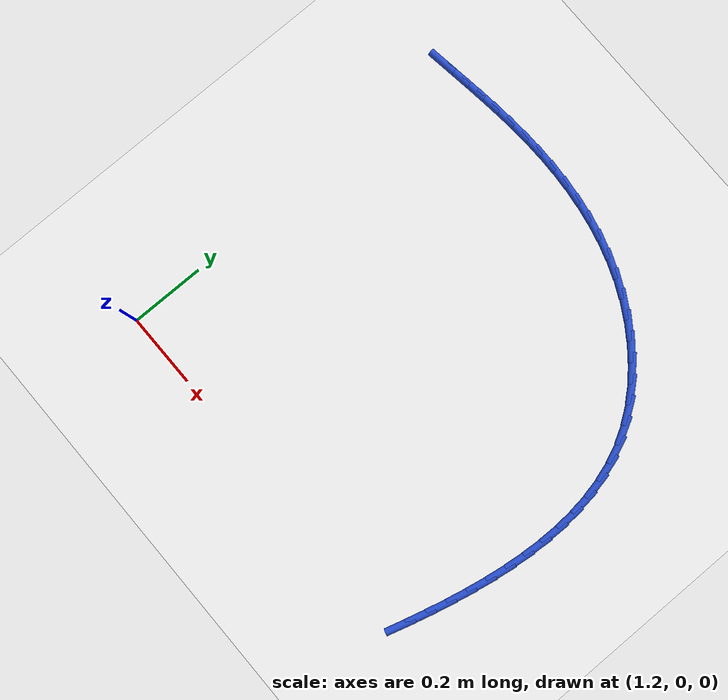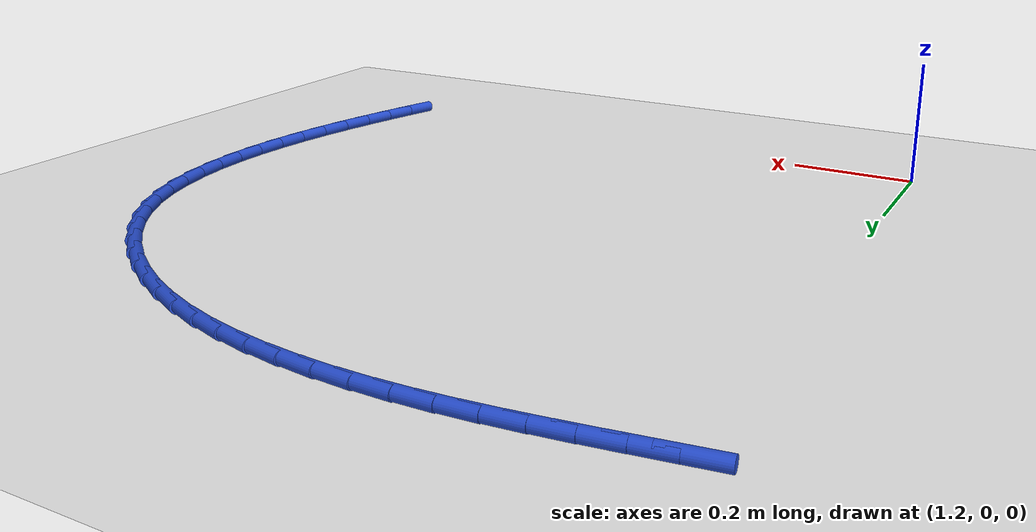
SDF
<sdf version="1.6">
 <world name="default">
  <model name="ground_plane">
   <static>1</static>
   <link name="link">
    <collision name="collision">
     <geometry><plane><normal>0 0 1</normal><size>100 100</size></plane></geometry>
     <surface><friction><ode><mu>100</mu><mu2>50</mu2></ode></friction></surface>
    </collision>
    <visual name="visual">
     <cast_shadows>0</cast_shadows>
     <geometry><plane><normal>0 0 1</normal><size>100 100</size></plane></geometry>
     <material>
      <script><uri>file://media/materials/scripts/gazebo.material</uri><name>Gazebo/WhiteGlow</name></script>
     </material>
    </visual>
   </link>
  </model>
  <model name="line">
   <link name="link_34">
    <pose>1.1870958664510638 1.0173273474379692 0.01 0 1.57 0.14026115526694666</pose>
    <collision name="collision">
     <geometry><cylinder><radius>0.01</radius><length>0.08</length></cylinder></geometry>
    </collision>
    <visual name="visual">
     <material>
      <script><name>Gazebo/Blue</name><uri>file://media/materials/scripts/gazebo.material</uri></script>
     </material>
     <geometry><cylinder><radius>0.01</radius><length>0.08</length></cylinder></geometry>
    </visual>
   </link>
   <link name="link_35">
    <pose>1.2387771490583237 1.0246241370984779 0.01 0 1.57 0.13809345208725277</pose>
    <collision name="collision">
     <geometry><cylinder><radius>0.01</radius><length>0.08</length></cylinder></geometry>
    </collision>
    <visual name="visual">
     <material>
      <script><name>Gazebo/Blue</name><uri>file://media/materials/scripts/gazebo.material</uri></script>
     </material>
     <geometry><cylinder><radius>0.01</radius><length>0.08</length></cylinder></geometry>
    </visual>
   </link>
   <link name="link_36">
    <pose>1.2902179160326488 1.031773272263413 0.01 0 1.57 0.12830410355506472</pose>
    <collision name="collision">
     <geometry><cylinder><radius>0.01</radius><length>0.08</length></cylinder></geometry>
    </collision>
    <visual name="visual">
     <material>
      <script><name>Gazebo/Blue</name><uri>file://media/materials/scripts/gazebo.material</uri></script>
     </material>
     <geometry><cylinder><radius>0.01</radius><length>0.08</length></cylinder></geometry>
    </visual>
   </link>
   <link name="link_37">
    <pose>1.3415637199567456 1.0383975389957725 0.01 0 1.57 0.11087773809146687</pose>
    <collision name="collision">
     <geometry><cylinder><radius>0.01</radius><length>0.08</length></cylinder></geometry>
    </collision>
    <visual name="visual">
     <material>
      <script><name>Gazebo/Blue</name><uri>file://media/materials/scripts/gazebo.material</uri></script>
     </material>
     <geometry><cylinder><radius>0.01</radius><length>0.08</length></cylinder></geometry>
    </visual>
   </link>
   <link name="link_38">
    <pose>1.3929601134133198 1.0441197233585546 0.01 0 1.57 0.08590301132738641</pose>
    <collision name="collision">
     <geometry><cylinder><radius>0.01</radius><length>0.08</length></cylinder></geometry>
    </collision>
    <visual name="visual">
     <material>
      <script><name>Gazebo/Blue</name><uri>file://media/materials/scripts/gazebo.material</uri></script>
     </material>
     <geometry><cylinder><radius>0.01</radius><length>0.08</length></cylinder></geometry>
    </visual>
   </link>
   <link name="link_39">
    <pose>1.4445526489850795 1.0485626114147577 0.01 0 1.57 0.053619003104559165</pose>
    <collision name="collision">
     <geometry><cylinder><radius>0.01</radius><length>0.08</length></cylinder></geometry>
    </collision>
    <visual name="visual">
     <material>
      <script><name>Gazebo/Blue</name><uri>file://media/materials/scripts/gazebo.material</uri></script>
     </material>
     <geometry><cylinder><radius>0.01</radius><length>0.08</length></cylinder></geometry>
    </visual>
   </link>
   <link name="link_40">
    <pose>1.4964848915391884 1.0513498380914954 0.01 0 1.57 0.0154529390688499</pose>
    <collision name="collision">
     <geometry><cylinder><radius>0.01</radius><length>0.08</length></cylinder></geometry>
    </collision>
    <visual name="visual">
     <material>
      <script><name>Gazebo/Blue</name><uri>file://media/materials/scripts/gazebo.material</uri></script>
     </material>
     <geometry><cylinder><radius>0.01</radius><length>0.08</length></cylinder></geometry>
    </visual>
   </link>
   <link name="link_41">
    <pose>1.5487764808535205 1.0521579611608056 0.01 0 1.57 -0.02688644155528152</pose>
    <collision name="collision">
     <geometry><cylinder><radius>0.01</radius><length>0.08</length></cylinder></geometry>
    </collision>
    <visual name="visual">
     <material>
      <script><name>Gazebo/Blue</name><uri>file://media/materials/scripts/gazebo.material</uri></script>
     </material>
     <geometry><cylinder><radius>0.01</radius><length>0.08</length></cylinder></geometry>
    </visual>
   </link>
   <link name="link_42">
    <pose>1.601252243010109 1.0507467345826207 0.01 0 1.57 -0.07350367243640493</pose>
    <collision name="collision">
     <geometry><cylinder><radius>0.01</radius><length>0.08</length></cylinder></geometry>
    </collision>
    <visual name="visual">
     <material>
      <script><name>Gazebo/Blue</name><uri>file://media/materials/scripts/gazebo.material</uri></script>
     </material>
     <geometry><cylinder><radius>0.01</radius><length>0.08</length></cylinder></geometry>
    </visual>
   </link>
   <link name="link_43">
    <pose>1.6537199227603057 1.0468832069867453 0.01 0 1.57 -0.1246443785448311</pose>
    <collision name="collision">
     <geometry><cylinder><radius>0.01</radius><length>0.08</length></cylinder></geometry>
    </collision>
    <visual name="visual">
     <material>
      <script><name>Gazebo/Blue</name><uri>file://media/materials/scripts/gazebo.material</uri></script>
     </material>
     <geometry><cylinder><radius>0.01</radius><length>0.08</length></cylinder></geometry>
    </visual>
   </link>
   <link name="link_44">
    <pose>1.7059872648554595 1.0403344270029815 0.01 0 1.57 -0.18051047314980015</pose>
    <collision name="collision">
     <geometry><cylinder><radius>0.01</radius><length>0.08</length></cylinder></geometry>
    </collision>
    <visual name="visual">
     <material>
      <script><name>Gazebo/Blue</name><uri>file://media/materials/scripts/gazebo.material</uri></script>
     </material>
     <geometry><cylinder><radius>0.01</radius><length>0.08</length></cylinder></geometry>
    </visual>
   </link>
   <link name="link_45">
    <pose>1.757862014046921 1.0308674432611329 0.01 0 1.57 -0.24122556278892943</pose>
    <collision name="collision">
     <geometry><cylinder><radius>0.01</radius><length>0.08</length></cylinder></geometry>
    </collision>
    <visual name="visual">
     <material>
      <script><name>Gazebo/Blue</name><uri>file://media/materials/scripts/gazebo.material</uri></script>
     </material>
     <geometry><cylinder><radius>0.01</radius><length>0.08</length></cylinder></geometry>
    </visual>
   </link>
   <link name="link_46">
    <pose>1.8091519150860405 1.0182493043910021 0.01 0 1.57 -0.3067937374642632</pose>
    <collision name="collision">
     <geometry><cylinder><radius>0.01</radius><length>0.08</length></cylinder></geometry>
    </collision>
    <visual name="visual">
     <material>
      <script><name>Gazebo/Blue</name><uri>file://media/materials/scripts/gazebo.material</uri></script>
     </material>
     <geometry><cylinder><radius>0.01</radius><length>0.08</length></cylinder></geometry>
    </visual>
   </link>
   <link name="link_47">
    <pose>1.8596647127241663 1.0022470590223929 0.01 0 1.57 -0.37705512136661634</pose>
    <collision name="collision">
     <geometry><cylinder><radius>0.01</radius><length>0.08</length></cylinder></geometry>
    </collision>
    <visual name="visual">
     <material>
      <script><name>Gazebo/Blue</name><uri>file://media/materials/scripts/gazebo.material</uri></script>
     </material>
     <geometry><cylinder><radius>0.01</radius><length>0.08</length></cylinder></geometry>
    </visual>
   </link>
   <link name="link_48">
    <pose>1.90920815171265 0.9826277557851075 0.01 0 1.57 -0.45120357299616404</pose>
    <collision name="collision">
     <geometry><cylinder><radius>0.01</radius><length>0.08</length></cylinder></geometry>
    </collision>
    <visual name="visual">
     <material>
      <script><name>Gazebo/Blue</name><uri>file://media/materials/scripts/gazebo.material</uri></script>
     </material>
     <geometry><cylinder><radius>0.01</radius><length>0.08</length></cylinder></geometry>
    </visual>
   </link>
   <link name="link_49">
    <pose>1.9575530177345846 0.9592027176161821 0.01 0 1.57 -0.5264947639277594</pose>
    <collision name="collision">
     <geometry><cylinder><radius>0.01</radius><length>0.08</length></cylinder></geometry>
    </collision>
    <visual name="visual">
     <material>
      <script><name>Gazebo/Blue</name><uri>file://media/materials/scripts/gazebo.material</uri></script>
     </material>
     <geometry><cylinder><radius>0.01</radius><length>0.08</length></cylinder></geometry>
    </visual>
   </link>
   <link name="link_50">
    <pose>2.004226227486883 0.9320754049693192 0.01 0 1.57 -0.6032399173432121</pose>
    <collision name="collision">
     <geometry><cylinder><radius>0.01</radius><length>0.08</length></cylinder></geometry>
    </collision>
    <visual name="visual">
     <material>
      <script><name>Gazebo/Blue</name><uri>file://media/materials/scripts/gazebo.material</uri></script>
     </material>
     <geometry><cylinder><radius>0.01</radius><length>0.08</length></cylinder></geometry>
    </visual>
   </link>
   <link name="link_51">
    <pose>2.048655886118196 0.9014676474306744 0.01 0 1.57 -0.683108060337162</pose>
    <collision name="collision">
     <geometry><cylinder><radius>0.01</radius><length>0.08</length></cylinder></geometry>
    </collision>
    <visual name="visual">
     <material>
      <script><name>Gazebo/Blue</name><uri>file://media/materials/scripts/gazebo.material</uri></script>
     </material>
     <geometry><cylinder><radius>0.01</radius><length>0.08</length></cylinder></geometry>
    </visual>
   </link>
   <link name="link_52">
    <pose>2.0902698180341455 0.8676016108963779 0.01 0 1.57 -0.7677783703944429</pose>
    <collision name="collision">
     <geometry><cylinder><radius>0.01</radius><length>0.08</length></cylinder></geometry>
    </collision>
    <visual name="visual">
     <material>
      <script><name>Gazebo/Blue</name><uri>file://media/materials/scripts/gazebo.material</uri></script>
     </material>
     <geometry><cylinder><radius>0.01</radius><length>0.08</length></cylinder></geometry>
    </visual>
   </link>
   <link name="link_53">
    <pose>2.128495847640349 0.8306994612625599 0.01 0 1.57 -0.8589338092545327</pose>
    <collision name="collision">
     <geometry><cylinder><radius>0.01</radius><length>0.08</length></cylinder></geometry>
    </collision>
    <visual name="visual">
     <material>
      <script><name>Gazebo/Blue</name><uri>file://media/materials/scripts/gazebo.material</uri></script>
     </material>
     <geometry><cylinder><radius>0.01</radius><length>0.08</length></cylinder></geometry>
    </visual>
   </link>
   <link name="link_54">
    <pose>2.162761799342427 0.7909833644253507 0.01 0 1.57 -0.9581980458995797</pose>
    <collision name="collision">
     <geometry><cylinder><radius>0.01</radius><length>0.08</length></cylinder></geometry>
    </collision>
    <visual name="visual">
     <material>
      <script><name>Gazebo/Blue</name><uri>file://media/materials/scripts/gazebo.material</uri></script>
     </material>
     <geometry><cylinder><radius>0.01</radius><length>0.08</length></cylinder></geometry>
    </visual>
   </link>
   <link name="link_55">
    <pose>2.1924954975459996 0.7486754862808791 0.01 0 1.57 -1.0665975625031598</pose>
    <collision name="collision">
     <geometry><cylinder><radius>0.01</radius><length>0.08</length></cylinder></geometry>
    </collision>
    <visual name="visual">
     <material>
      <script><name>Gazebo/Blue</name><uri>file://media/materials/scripts/gazebo.material</uri></script>
     </material>
     <geometry><cylinder><radius>0.01</radius><length>0.08</length></cylinder></geometry>
    </visual>
   </link>
   <link name="link_56">
    <pose>2.217146666160847 0.7039987080563526 0.01 0 1.57 -1.1764557857700109</pose>
    <collision name="collision">
     <geometry><cylinder><radius>0.01</radius><length>0.08</length></cylinder></geometry>
    </collision>
    <visual name="visual">
     <material>
      <script><name>Gazebo/Blue</name><uri>file://media/materials/scripts/gazebo.material</uri></script>
     </material>
     <geometry><cylinder><radius>0.01</radius><length>0.08</length></cylinder></geometry>
    </visual>
   </link>
   <link name="link_57">
    <pose>2.2366251550820673 0.657190940653333 0.01 0 1.57 -1.2784571123407862</pose>
    <collision name="collision">
     <geometry><cylinder><radius>0.01</radius><length>0.08</length></cylinder></geometry>
    </collision>
    <visual name="visual">
     <material>
      <script><name>Gazebo/Blue</name><uri>file://media/materials/scripts/gazebo.material</uri></script>
     </material>
     <geometry><cylinder><radius>0.01</radius><length>0.08</length></cylinder></geometry>
    </visual>
   </link>
   <link name="link_58">
    <pose>2.2512779660050435 0.6085043742130103 0.01 0 1.57 -1.3709382837595616</pose>
    <collision name="collision">
     <geometry><cylinder><radius>0.01</radius><length>0.08</length></cylinder></geometry>
    </collision>
    <visual name="visual">
     <material>
      <script><name>Gazebo/Blue</name><uri>file://media/materials/scripts/gazebo.material</uri></script>
     </material>
     <geometry><cylinder><radius>0.01</radius><length>0.08</length></cylinder></geometry>
    </visual>
   </link>
   <link name="link_59">
    <pose>2.2614694015131507 0.5581917639972597 0.01 0 1.57 -1.453426743368012</pose>
    <collision name="collision">
     <geometry><cylinder><radius>0.01</radius><length>0.08</length></cylinder></geometry>
    </collision>
    <visual name="visual">
     <material>
      <script><name>Gazebo/Blue</name><uri>file://media/materials/scripts/gazebo.material</uri></script>
     </material>
     <geometry><cylinder><radius>0.01</radius><length>0.08</length></cylinder></geometry>
    </visual>
   </link>
   <link name="link_60">
    <pose>2.267563764189766 0.5065058652679577 0.01 0 1.57 -1.5261044245211823</pose>
    <collision name="collision">
     <geometry><cylinder><radius>0.01</radius><length>0.08</length></cylinder></geometry>
    </collision>
    <visual name="visual">
     <material>
      <script><name>Gazebo/Blue</name><uri>file://media/materials/scripts/gazebo.material</uri></script>
     </material>
     <geometry><cylinder><radius>0.01</radius><length>0.08</length></cylinder></geometry>
    </visual>
   </link>
   <link name="link_61">
    <pose>2.2699253566182658 0.4536994332869794 0.01 0 1.57 1.55203951313978</pose>
    <collision name="collision">
     <geometry><cylinder><radius>0.01</radius><length>0.08</length></cylinder></geometry>
    </collision>
    <visual name="visual">
     <material>
      <script><name>Gazebo/Blue</name><uri>file://media/materials/scripts/gazebo.material</uri></script>
     </material>
     <geometry><cylinder><radius>0.01</radius><length>0.08</length></cylinder></geometry>
    </visual>
   </link>
   <link name="link_62">
    <pose>2.268918481382025 0.40002522331620144 0.01 0 1.57 1.4970475258395013</pose>
    <collision name="collision">
     <geometry><cylinder><radius>0.01</radius><length>0.08</length></cylinder></geometry>
    </collision>
    <visual name="visual">
     <material>
      <script><name>Gazebo/Blue</name><uri>file://media/materials/scripts/gazebo.material</uri></script>
     </material>
     <geometry><cylinder><radius>0.01</radius><length>0.08</length></cylinder></geometry>
    </visual>
   </link>
   <link name="link_63">
    <pose>2.2649074410644205 0.3457359906174987 0.01 0 1.57 1.4496952030478256</pose>
    <collision name="collision">
     <geometry><cylinder><radius>0.01</radius><length>0.08</length></cylinder></geometry>
    </collision>
    <visual name="visual">
     <material>
      <script><name>Gazebo/Blue</name><uri>file://media/materials/scripts/gazebo.material</uri></script>
     </material>
     <geometry><cylinder><radius>0.01</radius><length>0.08</length></cylinder></geometry>
    </visual>
   </link>
   <link name="link_64">
    <pose>2.258256538248828 0.29108449045274776 0.01 0 1.57 1.4092098937880944</pose>
    <collision name="collision">
     <geometry><cylinder><radius>0.01</radius><length>0.08</length></cylinder></geometry>
    </collision>
    <visual name="visual">
     <material>
      <script><name>Gazebo/Blue</name><uri>file://media/materials/scripts/gazebo.material</uri></script>
     </material>
     <geometry><cylinder><radius>0.01</radius><length>0.08</length></cylinder></geometry>
    </visual>
   </link>
   <link name="link_65">
    <pose>2.249330075518625 0.2363234780838242 0.01 0 1.57 1.3749123150973601</pose>
    <collision name="collision">
     <geometry><cylinder><radius>0.01</radius><length>0.08</length></cylinder></geometry>
    </collision>
    <visual name="visual">
     <material>
      <script><name>Gazebo/Blue</name><uri>file://media/materials/scripts/gazebo.material</uri></script>
     </material>
     <geometry><cylinder><radius>0.01</radius><length>0.08</length></cylinder></geometry>
    </visual>
   </link>
   <link name="link_66">
    <pose>2.238492355457186 0.18170570877260325 0.01 0 1.57 1.3462406789533357</pose>
    <collision name="collision">
     <geometry><cylinder><radius>0.01</radius><length>0.08</length></cylinder></geometry>
    </collision>
    <visual name="visual">
     <material>
      <script><name>Gazebo/Blue</name><uri>file://media/materials/scripts/gazebo.material</uri></script>
     </material>
     <geometry><cylinder><radius>0.01</radius><length>0.08</length></cylinder></geometry>
    </visual>
   </link>
   <link name="link_67">
    <pose>2.2261076806478886 0.12748393778096162 0.01 0 1.57 1.3227618830945307</pose>
    <collision name="collision">
     <geometry><cylinder><radius>0.01</radius><length>0.08</length></cylinder></geometry>
    </collision>
    <visual name="visual">
     <material>
      <script><name>Gazebo/Blue</name><uri>file://media/materials/scripts/gazebo.material</uri></script>
     </material>
     <geometry><cylinder><radius>0.01</radius><length>0.08</length></cylinder></geometry>
    </visual>
   </link>
   <link name="link_68">
    <pose>2.212540353674107 0.07391092037077414 0.01 0 1.57 1.3041781505956558</pose>
    <collision name="collision">
     <geometry><cylinder><radius>0.01</radius><length>0.08</length></cylinder></geometry>
    </collision>
    <visual name="visual">
     <material>
      <script><name>Gazebo/Blue</name><uri>file://media/materials/scripts/gazebo.material</uri></script>
     </material>
     <geometry><cylinder><radius>0.01</radius><length>0.08</length></cylinder></geometry>
    </visual>
   </link>
   <link name="link_69">
    <pose>2.198154675065858 0.021239408835148597 0.01 0 1.57 1.28976723048565</pose>
    <collision name="collision">
     <geometry><cylinder><radius>0.01</radius><length>0.08</length></cylinder></geometry>
    </collision>
    <visual name="visual">
     <material>
      <script><name>Gazebo/Blue</name><uri>file://media/materials/scripts/gazebo.material</uri></script>
     </material>
     <geometry><cylinder><radius>0.01</radius><length>0.08</length></cylinder></geometry>
    </visual>
   </link>
  </model>
 </world>
</sdf>
